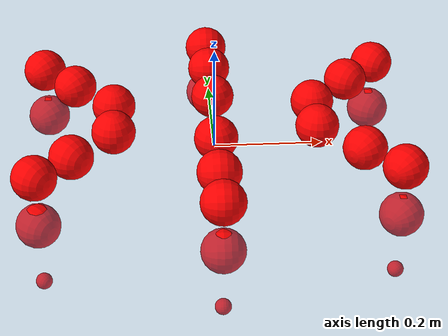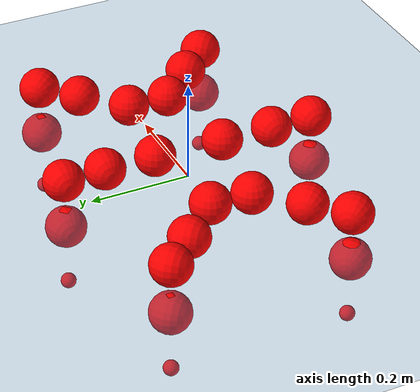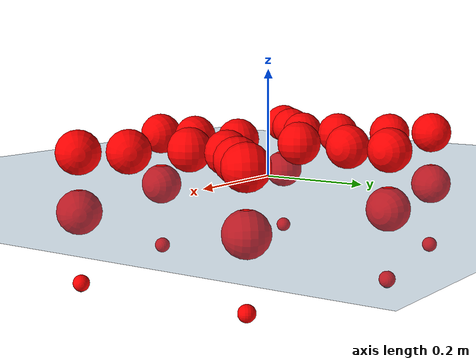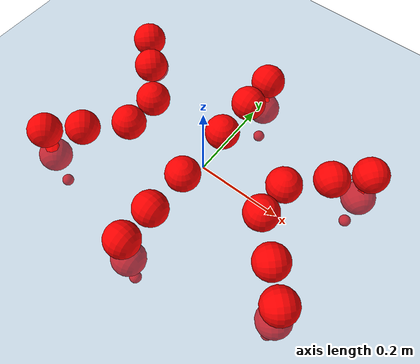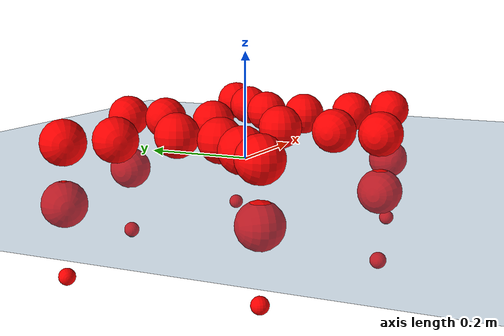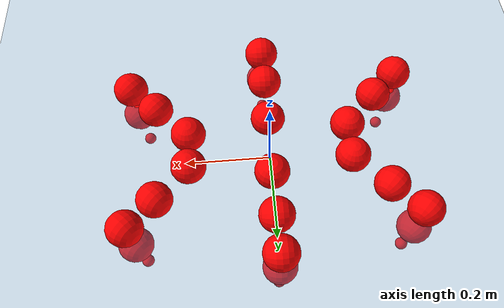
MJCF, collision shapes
<mujoco model="Golem">
  <compiler angle="radian" assetdir="assets" balanceinertia="true" inertiafromgeom="false"/>

  <option timestep="0.005" density="1.2" viscosity="2e-05"/>

  <size nkey="1"/>

  <visual>
    <quality shadowsize="8192"/>
    <map shadowclip="0.5"/>
  </visual>

  <default>
    <default class="/">
      <joint armature="0.01" damping="0.01" frictionloss="0.01"/>
      <geom contype="0" conaffinity="0" group="1" solref="-1000 -80"/>
      <site size="0.01 0.005 0.005" group="5"/>
      <general forcelimited="true" biastype="affine" gainprm="25" biasprm="0 -25 -0.5"/>
      <default class="visual">
        <geom type="mesh" group="2"/>
      </default>
      <default class="collision">
        <geom group="3"/>
      </default>
      <default class="foot">
        <geom size="0.01 0 0" condim="6" group="4" priority="1" solimp="0.015 1 0.01"/>
      </default>
      <default class="reward_collision_sphere">
        <geom group="5" rgba="1 0 0 1"/>
      </default>
    </default>
  </default>

  <asset>
    <texture type="skybox" colorspace="auto" name="//unnamed_texture_0" builtin="gradient" rgb1="0.95 0.95 0.95" rgb2="0.95 0.95 0.95" width="100" height="600"/>
    <texture type="2d" colorspace="auto" name="texplane" builtin="checker" rgb1="0.345 0.575 0.748" rgb2="0.345 0.575 0.748" markrgb="1 1 1" width="512" height="512"/>
    <material name="MatPlane" class="/" texture="texplane" texuniform="true" texrepeat="2 2" specular="0.9"/>
    <mesh name="body" class="/" file="body.stl" scale="0.001 0.001 0.001"/>
    <mesh name="coxa" class="/" file="coxa.stl" scale="0.001 0.001 0.001"/>
    <mesh name="femur" class="/" file="femur.stl" scale="0.001 0.001 0.001"/>
    <mesh name="tibia" class="/" file="tibia.stl" scale="0.001 0.001 0.001"/>
    <mesh name="tarsus" class="/" file="tarsus.stl" scale="0.001 0.001 0.001"/>
  </asset>

  <worldbody>
    <geom name="floor" class="/" size="100 100 0.125" type="plane" group="0" material="MatPlane"/>
    <light name="toplight_shadow" class="/" pos="0 0 5" dir="0.0990148 0.0990148 -0.990148" type="directional" ambient="0.04 0.04 0.04" diffuse="0.55 0.55 0.55" specular="0.12 0.12 0.12"/>
    <light name="toplight_fill" class="/" pos="0 0 5" dir="0.0990148 0.0990148 -0.990148" type="directional" castshadow="false" ambient="0.04 0.04 0.04" diffuse="0.3 0.3 0.3" specular="0.08 0.08 0.08"/>
    <body name="trunk" pos="0.000540915 -0.000157046 0.000952137" quat="1 9.18118e-05 7.79822e-05 0.000207449">
      <inertial pos="-0.000470561 0.000121996 -0.00439319" quat="0.999988 -0.000540068 0.0045895 0.00187461" mass="3.68148" diaginertia="0.0227272 0.00315169 0.0106801"/>
      <joint name="//unnamed_joint_0" type="free"/>
      <geom name="//unnamed_geom_1" class="/" pos="0 0 0.0646948" quat="1 0 0 0" type="mesh" rgba="0.9 0.9 0.9 1" mesh="body"/>
      <site name="imu" class="/" pos="0.148097 0.00284517 0.105891" size="0.0099339"/>
      <camera name="track" class="/" pos="0 -1.58685 0" quat="0.707107 0.707107 0 0" mode="trackcom"/>
      <camera name="ego_camera" class="/" pos="0.152865 0 0.101086" quat="-0.5 -0.5 0.5 0.5"/>
      <body name="coxa_RR" pos="-0.208956 -0.0659153 0.0637242" quat="0.382721 0.000178398 2.23323e-05 -0.923864">
        <inertial pos="0.000273226 0.000254661 0.00106462" quat="0.999994 -0.00136632 -0.00203006 -0.00254775" mass="0.196268" diaginertia="0.0226703 0.00316437 0.0105915"/>
        <joint name="coxa_joint_RR" class="/" pos="0 0 0" axis="0.00499799 0.00366731 -0.999981" range="-3.12083 3.15736" armature="0.0103858" damping="0.00490406" frictionloss="0.0103735"/>
        <geom name="//unnamed_geom_2" class="/" type="mesh" rgba="0.2 0.2 0.2 1" mesh="coxa"/>
        <geom name="//unnamed_geom_3" class="reward_collision_sphere" size="0.0397356" pos="-0.0352766 0 0"/>
        <body name="femur_RR" pos="0.0697502 0.00187184 0.000526677" quat="0.500091 -0.500003 0.499738 0.500168">
          <inertial pos="0.000953099 0.000815314 0.00147241" quat="0.999999 0.00032436 -0.00017601 -0.00150718" mass="0.19607" diaginertia="0.0223147 0.00310845 0.0106298"/>
          <joint name="femur_joint_RR" class="/" pos="0 0 0" axis="0.000698698 -0.000618038 -1" stiffness="0.000718911" range="-3.13114 3.13641" armature="0.00970176" damping="0" frictionloss="0.0106905"/>
          <geom name="//unnamed_geom_4" class="/" type="mesh" rgba="0.9 0.9 0.9 1" mesh="femur"/>
          <geom name="//unnamed_geom_5" class="reward_collision_sphere" size="0.0397356"/>
          <body name="tibia_RR" pos="-0.000309619 -0.0848443 -0.00135892" quat="0.000126417 1 -2.75121e-05 5.56501e-05">
            <inertial pos="-0.000774314 -0.00154428 -5.95732e-05" quat="0.999998 0.00162662 -0.000225805 0.000678894" mass="0.193919" diaginertia="0.0224896 0.00313743 0.0105693"/>
            <joint name="tibia_joint_RR" class="/" pos="0 0 0" axis="0.00232295 -0.000926732 0.999997" stiffness="0.000282701" range="-3.13882 3.13683" armature="0.0101927" damping="0.00777072" frictionloss="0.0102973"/>
            <geom name="//unnamed_geom_6" class="/" type="mesh" rgba="0.2 0.2 0.2 1" mesh="tibia"/>
            <geom name="//unnamed_geom_7" class="reward_collision_sphere" size="0.0397356"/>
            <body name="tarsus_RR" pos="0.101947 0.00067173 0.000130137" quat="1 0.000109704 0.000185697 0.000100777">
              <inertial pos="0.07178 0.00108536 -0.000100221" quat="0.499514 0.49984 0.503472 0.497154" mass="0.195315" diaginertia="0.0226974 0.00314704 0.0106091"/>
              <joint name="tarsus_joint_RR" class="/" pos="0 0 0" axis="-0.00222263 0.00155317 0.999996" range="-3.16769 3.17028" armature="0.00996287" damping="0" frictionloss="0.00977804"/>
              <geom name="//unnamed_geom_8" class="/" type="mesh" rgba="0.9 0.9 0.9 1" mesh="tarsus"/>
              <geom name="foot_1" class="foot" size="0.00970272" pos="0.131699 0 0" quat="0 -0.707107 0 0.707107"/>
              <geom name="//unnamed_geom_10" class="reward_collision_sphere" size="0.0397356"/>
              <geom name="//unnamed_geom_11" class="reward_collision_sphere" size="0.0149008" pos="0.126408 0 0"/>
              <site name="foot_1" class="foot" pos="0.131699 0 0" quat="0 -0.707107 0 0.707107" size="0.0099339"/>
            </body>
          </body>
        </body>
      </body>
      <body name="coxa_RM" pos="-0.00126406 -0.105833 0.0634925" quat="0.707408 -0.000205952 -9.4128e-05 -0.706806">
        <inertial pos="0.000270716 0.00095045 -0.000187846" quat="0.999979 0.0063409 -0.00108059 -0.000150333" mass="0.197771" diaginertia="0.0224882 0.00314551 0.0106182"/>
        <joint name="coxa_joint_RM" class="/" pos="0 0 0" axis="0.00256085 0.000536825 -0.999997" range="-3.14496 3.14758" armature="0.0100439" damping="0.0103363" frictionloss="0.00968632"/>
        <geom name="//unnamed_geom_12" class="/" type="mesh" rgba="0.2 0.2 0.2 1" mesh="coxa"/>
        <geom name="//unnamed_geom_13" class="reward_collision_sphere" size="0.0397356" pos="-0.0352766 0 0"/>
        <body name="femur_RM" pos="0.0695764 -0.000509025 0.000197187" quat="0.500157 -0.500242 0.499727 0.499874">
          <inertial pos="-0.00107728 0.000801384 -0.00152702" quat="0.999998 0.000263171 0.00127934 0.00168609" mass="0.197128" diaginertia="0.0223628 0.00314832 0.010438"/>
          <joint name="femur_joint_RM" class="/" pos="0 0 0" axis="0.00171557 -0.00357279 -0.999992" range="-3.14022 3.15728" armature="0.00945169" damping="0.00437286" frictionloss="0.00960634"/>
          <geom name="//unnamed_geom_14" class="/" type="mesh" rgba="0.9 0.9 0.9 1" mesh="femur"/>
          <geom name="//unnamed_geom_15" class="reward_collision_sphere" size="0.0397356"/>
          <body name="tibia_RM" pos="0.000235431 -0.0864167 0.00103986" quat="1.30924e-05 1 0.000446571 -0.000116939">
            <inertial pos="0.000483966 -0.000165183 -0.000238858" quat="1 -0.000364803 4.62366e-05 0.000158161" mass="0.194382" diaginertia="0.0221157 0.00307933 0.0105148"/>
            <joint name="tibia_joint_RM" class="/" pos="0 0 0" axis="0.00379889 0.00083493 0.999992" range="-3.15477 3.12908" armature="0.00965727" damping="0" frictionloss="0.00946699"/>
            <geom name="//unnamed_geom_16" class="/" type="mesh" rgba="0.2 0.2 0.2 1" mesh="tibia"/>
            <geom name="//unnamed_geom_17" class="reward_collision_sphere" size="0.0397356"/>
            <body name="tarsus_RM" pos="0.102492 0.000438265 -0.00048098" quat="1 0.000202529 8.19602e-06 0.000177614">
              <inertial pos="0.0709291 0.000270571 -0.00030851" quat="0.499585 0.499583 0.500111 0.50072" mass="0.194856" diaginertia="0.0221081 0.0031238 0.0102964"/>
              <joint name="tarsus_joint_RM" class="/" pos="0 0 0" axis="-0.00185005 -0.00109874 0.999998" stiffness="0.00037487" range="-3.15013 3.11473" armature="0.00998635" damping="0.00290007" frictionloss="0.00994707"/>
              <geom name="//unnamed_geom_18" class="/" type="mesh" rgba="0.9 0.9 0.9 1" mesh="tarsus"/>
              <geom name="foot_2" class="foot" size="0.00975827" pos="0.131699 0 0" quat="0 -0.707107 0 0.707107"/>
              <geom name="//unnamed_geom_20" class="reward_collision_sphere" size="0.0397356"/>
              <geom name="//unnamed_geom_21" class="reward_collision_sphere" size="0.0149008" pos="0.126408 0 0"/>
              <site name="foot_2" class="foot" pos="0.131699 0 0" quat="0 -0.707107 0 0.707107" size="0.0099339"/>
            </body>
          </body>
        </body>
      </body>
      <body name="coxa_RF" pos="0.208686 -0.0666674 0.0639473" quat="0.923837 0.000589649 7.5534e-05 -0.382785">
        <inertial pos="-0.000733207 -0.00176738 0.000682514" quat="0.999999 0.00094375 0.00125 7.86116e-05" mass="0.194341" diaginertia="0.022387 0.00312393 0.0104777"/>
        <joint name="coxa_joint_RF" class="/" pos="0 0 0" axis="0.000281724 8.50768e-05 -1" stiffness="3.30077e-05" range="-3.1398 3.12866" armature="0.00974293" damping="0" frictionloss="0.00986283"/>
        <geom name="//unnamed_geom_22" class="/" type="mesh" rgba="0.2 0.2 0.2 1" mesh="coxa"/>
        <geom name="//unnamed_geom_23" class="reward_collision_sphere" size="0.0397356" pos="-0.0352766 0 0"/>
        <body name="femur_RF" pos="0.0706213 0.000975459 -0.00100424" quat="0.500044 -0.499946 0.499995 0.500015">
          <inertial pos="0.000747652 -0.000214322 0.000138638" quat="1 -9.18598e-05 -4.74025e-05 -0.000979995" mass="0.194393" diaginertia="0.0224852 0.00305068 0.0104677"/>
          <joint name="femur_joint_RF" class="/" pos="0 0 0" axis="0.00115798 0.000983845 -0.999999" range="-3.12058 3.14169" armature="0.00999636" damping="0.00465154" frictionloss="0.0100687"/>
          <geom name="//unnamed_geom_24" class="/" type="mesh" rgba="0.9 0.9 0.9 1" mesh="femur"/>
          <geom name="//unnamed_geom_25" class="reward_collision_sphere" size="0.0397356"/>
          <body name="tibia_RF" pos="-0.000665306 -0.0865156 -0.00105588" quat="5.34144e-05 1 -2.21177e-05 2.53822e-07">
            <inertial pos="-0.000308409 0.00104486 -6.25342e-05" quat="0.999979 0.000578272 0.00227403 -0.00602814" mass="0.200935" diaginertia="0.0225591 0.00317281 0.0105906"/>
            <joint name="tibia_joint_RF" class="/" pos="0 0 0" axis="-0.000938792 0.00292534 0.999995" range="-3.13924 3.13636" armature="0.0100698" damping="0.00223663" frictionloss="0.00985556"/>
            <geom name="//unnamed_geom_26" class="/" type="mesh" rgba="0.2 0.2 0.2 1" mesh="tibia"/>
            <geom name="//unnamed_geom_27" class="reward_collision_sphere" size="0.0397356"/>
            <body name="tarsus_RF" pos="0.10372 0.000707398 -0.00142606" quat="1 0.000300722 -0.000309643 1.9907e-05">
              <inertial pos="0.0694624 -0.000646449 -0.000860952" quat="0.498923 0.500594 0.50172 0.498757" mass="0.193533" diaginertia="0.022577 0.00314635 0.0104531"/>
              <joint name="tarsus_joint_RF" class="/" pos="0 0 0" axis="0.00172828 0.00144338 0.999997" range="-3.13703 3.13892" armature="0.00997012" damping="0.00919088" frictionloss="0.0100998"/>
              <geom name="//unnamed_geom_28" class="/" type="mesh" rgba="0.9 0.9 0.9 1" mesh="tarsus"/>
              <geom name="foot_3" class="foot" size="0.0102158" pos="0.131699 0 0" quat="0 -0.707107 0 0.707107"/>
              <geom name="//unnamed_geom_30" class="reward_collision_sphere" size="0.0397356"/>
              <geom name="//unnamed_geom_31" class="reward_collision_sphere" size="0.0149008" pos="0.126408 0 0"/>
              <site name="foot_3" class="foot" pos="0.131699 0 0" quat="0 -0.707107 0 0.707107" size="0.0099339"/>
            </body>
          </body>
        </body>
      </body>
      <body name="coxa_LR" pos="-0.208692 0.0675819 0.0661616" quat="0.382955 -0.00016938 0.000370418 0.923767">
        <inertial pos="-0.000230384 -0.00046999 0.00138578" quat="0.999999 -0.00066681 -0.000649485 -0.00120499" mass="0.195034" diaginertia="0.0222971 0.00311764 0.0103306"/>
        <joint name="coxa_joint_LR" class="/" pos="0 0 0" axis="0.00192471 -0.00165537 -0.999997" range="-3.12004 3.12974" armature="0.0103483" damping="0.00162764" frictionloss="0.00939905"/>
        <geom name="//unnamed_geom_32" class="/" type="mesh" rgba="0.2 0.2 0.2 1" mesh="coxa"/>
        <geom name="//unnamed_geom_33" class="reward_collision_sphere" size="0.0397356" pos="-0.0352766 0 0"/>
        <body name="femur_LR" pos="0.0712847 -0.00199356 -0.00215917" quat="0.500153 -0.500155 0.49988 0.499812">
          <inertial pos="0.000435574 0.000740718 -0.000481799" quat="0.999994 -0.00243104 0.00188986 0.00127266" mass="0.192315" diaginertia="0.0225158 0.0031462 0.0105128"/>
          <joint name="femur_joint_LR" class="/" pos="0 0 0" axis="-0.00152041 0.00359427 0.999992" range="-3.16908 3.12149" armature="0.00944087" damping="0.00746444" frictionloss="0.00983857"/>
          <geom name="//unnamed_geom_34" class="/" type="mesh" rgba="0.9 0.9 0.9 1" mesh="femur"/>
          <geom name="//unnamed_geom_35" class="reward_collision_sphere" size="0.0397356"/>
          <body name="tibia_LR" pos="-9.47592e-05 -0.0875125 -0.00188696" quat="-0.000137827 1 0.000303978 -0.000294077">
            <inertial pos="-0.00117118 -0.000492041 -0.000425313" quat="1 9.96801e-05 8.14632e-05 0.000361467" mass="0.196794" diaginertia="0.0225963 0.00316933 0.010692"/>
            <joint name="tibia_joint_LR" class="/" pos="0 0 0" axis="0.00490455 -0.00381848 -0.999981" range="-3.12841 3.13251" armature="0.0102388" damping="4.62369e-05" frictionloss="0.00998526"/>
            <geom name="//unnamed_geom_36" class="/" type="mesh" rgba="0.2 0.2 0.2 1" mesh="tibia"/>
            <geom name="//unnamed_geom_37" class="reward_collision_sphere" size="0.0397356"/>
            <body name="tarsus_LR" pos="0.104347 0.000863629 0.00144504" quat="1 -8.43402e-05 0.00025948 -0.000434907">
              <inertial pos="0.0706327 0.0003426 0.000673565" quat="0.500001 0.500184 0.499891 0.499924" mass="0.194936" diaginertia="0.0223873 0.00310033 0.0103888"/>
              <joint name="tarsus_joint_LR" class="/" pos="0 0 0" axis="0.00185673 0.00092262 -0.999998" range="-3.1344 3.13792" armature="0.00948508" damping="0.0295184" frictionloss="0.010254"/>
              <geom name="//unnamed_geom_38" class="/" type="mesh" rgba="0.9 0.9 0.9 1" mesh="tarsus"/>
              <geom name="foot_4" class="foot" size="0.009774" pos="0.131699 0 0" quat="0.707107 0 -0.707107 0"/>
              <geom name="//unnamed_geom_40" class="reward_collision_sphere" size="0.0397356"/>
              <geom name="//unnamed_geom_41" class="reward_collision_sphere" size="0.0149008" pos="0.126408 0 0"/>
              <site name="foot_4" class="foot" pos="0.131699 0 0" quat="0.707107 0 -0.707107 0" size="0.0099339"/>
            </body>
          </body>
        </body>
      </body>
      <body name="coxa_LM" pos="1.04e-05 0.103576 0.0649379" quat="0.707114 -6.41196e-06 -4.86276e-05 0.707099">
        <inertial pos="0.000908305 -0.000106084 3.66518e-05" quat="0.999994 -0.0027341 0.00174797 0.000687063" mass="0.194833" diaginertia="0.0227986 0.00312633 0.0104976"/>
        <joint name="coxa_joint_LM" class="/" pos="0 0 0" axis="-0.00460574 -0.00133648 -0.999989" range="-3.12933 3.13965" armature="0.00973542" damping="0" frictionloss="0.0103299"/>
        <geom name="//unnamed_geom_42" class="/" type="mesh" rgba="0.2 0.2 0.2 1" mesh="coxa"/>
        <geom name="//unnamed_geom_43" class="reward_collision_sphere" size="0.0397356" pos="-0.0352766 0 0"/>
        <body name="femur_LM" pos="0.0671961 0.00121153 0.000370399" quat="0.500048 -0.500041 0.500015 0.499896">
          <inertial pos="-0.000859839 2.7844e-05 0.000939356" quat="0.999997 0.00113858 -0.000638611 0.00200428" mass="0.196417" diaginertia="0.0218749 0.00311711 0.0105449"/>
          <joint name="femur_joint_LM" class="/" pos="0 0 0" axis="-0.00517626 -0.00896781 0.999946" stiffness="1.94451e-05" range="-3.12059 3.15885" armature="0.0100357" damping="0" frictionloss="0.00990841"/>
          <geom name="//unnamed_geom_44" class="/" type="mesh" rgba="0.9 0.9 0.9 1" mesh="femur"/>
          <geom name="//unnamed_geom_45" class="reward_collision_sphere" size="0.0397356"/>
          <body name="tibia_LM" pos="0.000663779 -0.083286 0.00149519" quat="-1.99338e-05 1 -3.60594e-05 5.66262e-05">
            <inertial pos="-0.00101436 0.000322347 8.24691e-05" quat="0.999997 -5.7448e-05 0.00226763 -0.000906234" mass="0.196908" diaginertia="0.0224891 0.00313293 0.0104379"/>
            <joint name="tibia_joint_LM" class="/" pos="0 0 0" axis="0.000313818 4.14462e-05 -1" range="-3.14527 3.15835" armature="0.01016" damping="0" frictionloss="0.00908338"/>
            <geom name="//unnamed_geom_46" class="/" type="mesh" rgba="0.2 0.2 0.2 1" mesh="tibia"/>
            <geom name="//unnamed_geom_47" class="reward_collision_sphere" size="0.0397356"/>
            <body name="tarsus_LM" pos="0.104176 -0.000934795 0.000179173" quat="1 -0.00024994 0.000220644 -7.23549e-05">
              <inertial pos="0.0704056 1.70223e-05 0.000733572" quat="0.499284 0.501323 0.499274 0.500116" mass="0.195444" diaginertia="0.0226906 0.00314384 0.010662"/>
              <joint name="tarsus_joint_LM" class="/" pos="0 0 0" axis="-0.00182838 0.000139241 -0.999998" range="-3.14324 3.13768" armature="0.00968819" damping="0" frictionloss="0.0100862"/>
              <geom name="//unnamed_geom_48" class="/" type="mesh" rgba="0.9 0.9 0.9 1" mesh="tarsus"/>
              <geom name="foot_5" class="foot" size="0.0106897" pos="0.131699 0 0" quat="0.707107 0 -0.707107 0"/>
              <geom name="//unnamed_geom_50" class="reward_collision_sphere" size="0.0397356"/>
              <geom name="//unnamed_geom_51" class="reward_collision_sphere" size="0.0149008" pos="0.126408 0 0"/>
              <site name="foot_5" class="foot" pos="0.131699 0 0" quat="0.707107 0 -0.707107 0" size="0.0099339"/>
            </body>
          </body>
        </body>
      </body>
      <body name="coxa_LF" pos="0.209167 0.0657808 0.0642601" quat="0.923794 -2.65768e-05 -7.69239e-05 0.38289">
        <inertial pos="-4.18471e-07 -0.00130356 0.000223712" quat="0.999995 0.00184355 2.19889e-05 0.00260075" mass="0.199289" diaginertia="0.0230165 0.00319765 0.0107116"/>
        <joint name="coxa_joint_LF" class="/" pos="0 0 0" axis="-0.00718874 -0.00355384 -0.999968" range="-3.14486 3.13917" armature="0.00944617" damping="0" frictionloss="0.00982389"/>
        <geom name="//unnamed_geom_52" class="/" type="mesh" rgba="0.2 0.2 0.2 1" mesh="coxa"/>
        <geom name="//unnamed_geom_53" class="reward_collision_sphere" size="0.0397356" pos="-0.0352766 0 0"/>
        <body name="femur_LF" pos="0.0688095 0.000843531 0.000344312" quat="0.499919 -0.500152 0.499878 0.50005">
          <inertial pos="1.91817e-05 -0.000766357 -0.000580349" quat="1 -0.000197789 0.000160588 1.2145e-05" mass="0.193598" diaginertia="0.0220649 0.00311101 0.0104637"/>
          <joint name="femur_joint_LF" class="/" pos="0 0 0" axis="0.000581395 -0.00080386 1" range="-3.14441 3.13757" armature="0.00964832" damping="0" frictionloss="0.0100156"/>
          <geom name="//unnamed_geom_54" class="/" type="mesh" rgba="0.9 0.9 0.9 1" mesh="femur"/>
          <geom name="//unnamed_geom_55" class="reward_collision_sphere" size="0.0397356"/>
          <body name="tibia_LF" pos="-0.000142773 -0.0853542 -0.000179291" quat="9.68997e-07 1 1.11716e-06 -3.00886e-06">
            <inertial pos="0.00101225 0.00118144 0.00156661" quat="0.999996 -0.00144598 -0.00241382 -0.000313652" mass="0.195139" diaginertia="0.0223977 0.00310399 0.0107119"/>
            <joint name="tibia_joint_LF" class="/" pos="0 0 0" axis="-0.00521528 0.00601776 -0.999968" range="-3.15016 3.11924" armature="0.0097854" damping="0.00272597" frictionloss="0.0102781"/>
            <geom name="//unnamed_geom_56" class="/" type="mesh" rgba="0.2 0.2 0.2 1" mesh="tibia"/>
            <geom name="//unnamed_geom_57" class="reward_collision_sphere" size="0.0397356"/>
            <body name="tarsus_LF" pos="0.104714 -0.000109271 -0.000438868" quat="1 1.19194e-05 -6.13842e-05 -2.23644e-05">
              <inertial pos="0.071608 0.000170438 0.000945991" quat="0.499703 0.500074 0.499452 0.50077" mass="0.194938" diaginertia="0.0225746 0.00313652 0.0107155"/>
              <joint name="tarsus_joint_LF" class="/" pos="0 0 0" axis="0.00113285 0.000267487 -0.999999" range="-3.14584 3.1154" armature="0.00943905" damping="0.0112673" frictionloss="0.00948869"/>
              <geom name="//unnamed_geom_58" class="/" type="mesh" rgba="0.9 0.9 0.9 1" mesh="tarsus"/>
              <geom name="foot_6" class="foot" size="0.00970979" pos="0.131699 0 0" quat="0.707107 0 -0.707107 0"/>
              <geom name="//unnamed_geom_60" class="reward_collision_sphere" size="0.0397356"/>
              <geom name="//unnamed_geom_61" class="reward_collision_sphere" size="0.0149008" pos="0.126408 0 0"/>
              <site name="foot_6" class="foot" pos="0.131699 0 0" quat="0.707107 0 -0.707107 0" size="0.0099339"/>
            </body>
          </body>
        </body>
      </body>
    </body>
  </worldbody>

  <contact>
    <pair class="/" geom1="floor" geom2="foot_1" name="//unnamed_contact_0"/>
    <pair class="/" geom1="floor" geom2="foot_2" name="//unnamed_contact_1"/>
    <pair class="/" geom1="floor" geom2="foot_3" name="//unnamed_contact_2"/>
    <pair class="/" geom1="floor" geom2="foot_4" name="//unnamed_contact_3"/>
    <pair class="/" geom1="floor" geom2="foot_5" name="//unnamed_contact_4"/>
    <pair class="/" geom1="floor" geom2="foot_6" name="//unnamed_contact_5"/>
  </contact>

  <actuator>
    <general name="coxa_joint_RR" class="/" joint="coxa_joint_RR" forcerange="-7.21244 7.21244" gainprm="24.3234" biasprm="0 -24.3234 -0.5066"/>
    <general name="femur_joint_RR" class="/" joint="femur_joint_RR" forcerange="-7.24564 7.24564" gainprm="24.3234" biasprm="0 -24.3234 -0.5066"/>
    <general name="tibia_joint_RR" class="/" joint="tibia_joint_RR" forcerange="-7.23933 7.23933" gainprm="24.3234" biasprm="0 -24.3234 -0.5066"/>
    <general name="tarsus_joint_RR" class="/" joint="tarsus_joint_RR" forcerange="-7.31154 7.31154" gainprm="24.3234" biasprm="0 -24.3234 -0.5066"/>
    <general name="coxa_joint_RM" class="/" joint="coxa_joint_RM" forcerange="-7.21093 7.21093" gainprm="24.3234" biasprm="0 -24.3234 -0.5066"/>
    <general name="femur_joint_RM" class="/" joint="femur_joint_RM" forcerange="-7.24265 7.24265" gainprm="24.3234" biasprm="0 -24.3234 -0.5066"/>
    <general name="tibia_joint_RM" class="/" joint="tibia_joint_RM" forcerange="-7.28273 7.28273" gainprm="24.3234" biasprm="0 -24.3234 -0.5066"/>
    <general name="tarsus_joint_RM" class="/" joint="tarsus_joint_RM" forcerange="-7.30366 7.30366" gainprm="24.3234" biasprm="0 -24.3234 -0.5066"/>
    <general name="coxa_joint_RF" class="/" joint="coxa_joint_RF" forcerange="-7.2348 7.2348" gainprm="24.3234" biasprm="0 -24.3234 -0.5066"/>
    <general name="femur_joint_RF" class="/" joint="femur_joint_RF" forcerange="-7.23874 7.23874" gainprm="24.3234" biasprm="0 -24.3234 -0.5066"/>
    <general name="tibia_joint_RF" class="/" joint="tibia_joint_RF" forcerange="-7.28337 7.28337" gainprm="24.3234" biasprm="0 -24.3234 -0.5066"/>
    <general name="tarsus_joint_RF" class="/" joint="tarsus_joint_RF" forcerange="-7.25271 7.25271" gainprm="24.3234" biasprm="0 -24.3234 -0.5066"/>
    <general name="coxa_joint_LR" class="/" joint="coxa_joint_LR" forcerange="-7.41917 7.41917" gainprm="24.3234" biasprm="0 -24.3234 -0.5066"/>
    <general name="femur_joint_LR" class="/" joint="femur_joint_LR" forcerange="-7.1491 7.1491" gainprm="24.3234" biasprm="0 -24.3234 -0.5066"/>
    <general name="tibia_joint_LR" class="/" joint="tibia_joint_LR" forcerange="-7.39135 7.39135" gainprm="24.3234" biasprm="0 -24.3234 -0.5066"/>
    <general name="tarsus_joint_LR" class="/" joint="tarsus_joint_LR" forcerange="-7.24202 7.24202" gainprm="24.3234" biasprm="0 -24.3234 -0.5066"/>
    <general name="coxa_joint_LM" class="/" joint="coxa_joint_LM" forcerange="-7.29973 7.29973" gainprm="24.3234" biasprm="0 -24.3234 -0.5066"/>
    <general name="femur_joint_LM" class="/" joint="femur_joint_LM" forcerange="-7.51324 7.51324" gainprm="24.3234" biasprm="0 -24.3234 -0.5066"/>
    <general name="tibia_joint_LM" class="/" joint="tibia_joint_LM" forcerange="-7.26173 7.26173" gainprm="24.3234" biasprm="0 -24.3234 -0.5066"/>
    <general name="tarsus_joint_LM" class="/" joint="tarsus_joint_LM" forcerange="-7.01916 7.01916" gainprm="24.3234" biasprm="0 -24.3234 -0.5066"/>
    <general name="coxa_joint_LF" class="/" joint="coxa_joint_LF" forcerange="-7.3659 7.3659" gainprm="24.3234" biasprm="0 -24.3234 -0.5066"/>
    <general name="femur_joint_LF" class="/" joint="femur_joint_LF" forcerange="-7.16113 7.16113" gainprm="24.3234" biasprm="0 -24.3234 -0.5066"/>
    <general name="tibia_joint_LF" class="/" joint="tibia_joint_LF" forcerange="-7.25175 7.25175" gainprm="24.3234" biasprm="0 -24.3234 -0.5066"/>
    <general name="tarsus_joint_LF" class="/" joint="tarsus_joint_LF" forcerange="-6.7954 6.7954" gainprm="24.3234" biasprm="0 -24.3234 -0.5066"/>
  </actuator>

  <sensor>
    <gyro site="imu" name="imu_angular_velocity"/>
    <velocimeter site="imu" name="imu_linear_velocity"/>
    <framelinvel objtype="site" objname="foot_1" name="foot_1_global_linear_velocity"/>
    <framelinvel objtype="site" objname="foot_2" name="foot_2_global_linear_velocity"/>
    <framelinvel objtype="site" objname="foot_3" name="foot_3_global_linear_velocity"/>
    <framelinvel objtype="site" objname="foot_4" name="foot_4_global_linear_velocity"/>
    <framelinvel objtype="site" objname="foot_5" name="foot_5_global_linear_velocity"/>
    <framelinvel objtype="site" objname="foot_6" name="foot_6_global_linear_velocity"/>
  </sensor>

  <keyframe>
    <key name="home" qpos="0 0 0.1457 1 0 0 0 0 0 0 0 0 0 0 0 0 0 0 0 0 0 0 0 0 0 0 0 0 0 0 0"/>
  </keyframe>
</mujoco>
